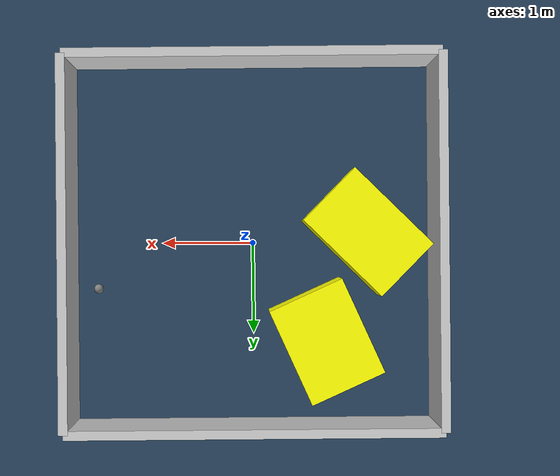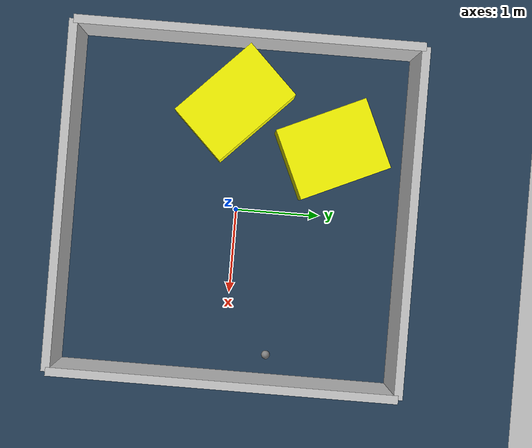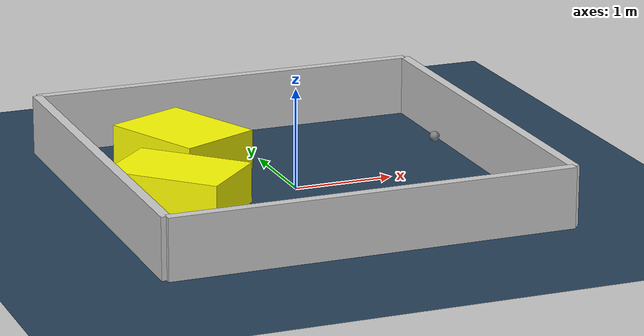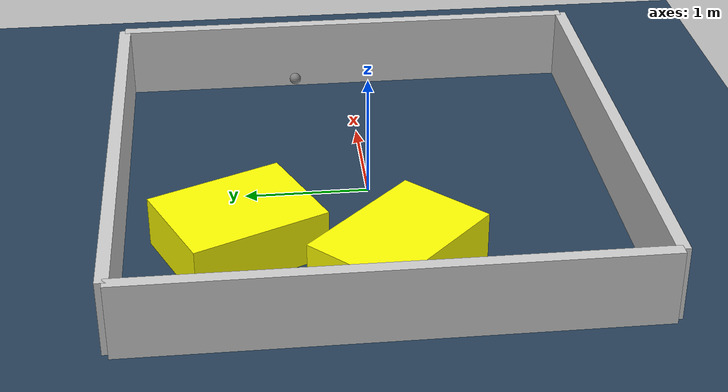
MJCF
<?xml version="1.0" ?>
<mujoco model="generated_environment">
  <option timestep="0.01" integrator="RK4" cone="elliptic"/>
  <default>
    <geom density="1"/>
  </default>
  <asset>
    <texture builtin="gradient" height="3072" rgb1="0.3 0.5 0.7" rgb2="0 0 0" type="skybox" width="512"/>
    <texture builtin="checker" height="300" mark="edge" markrgb="0.8 0.8 0.8" name="groundplane" rgb1="0.2 0.3 0.4" rgb2="0.1 0.2 0.3" type="2d" width="300"/>
    <material name="groundplane" reflectance="0.2" texrepeat="5 5" texture="groundplane" texuniform="true"/>
    <material name="robot" rgba="0.0 1.0 0.0 1"/>
  </asset>
  <worldbody>
    <light dir="0 0 -1" directional="true" pos="0 0 1.5"/>
    <geom condim="4" friction="1.0 0.005 0.001" material="groundplane" name="floor" size="0 0 0.05" type="plane"/>
    <body name="walls">
      <geom name="wall_1" condim="4" pos="-2.0 0.0 0.3" rgba="0.800000011920929 0.800000011920929 0.800000011920929 1.0" size="0.05 2.0 0.3" type="box"/>
      <geom name="wall_2" condim="4" pos="2.0 0.0 0.3" rgba="0.800000011920929 0.800000011920929 0.800000011920929 1.0" size="0.05 2.0 0.3" type="box"/>
      <geom name="wall_3" condim="4" pos="0.0 -2.0 0.3" rgba="0.800000011920929 0.800000011920929 0.800000011920929 1.0" size="2.0 0.05 0.3" type="box"/>
      <geom name="wall_4" condim="4" pos="0.0 2.0 0.3" rgba="0.800000011920929 0.800000011920929 0.800000011920929 1.0" size="2.0 0.05 0.3" type="box"/>
    </body>
    <body name="robot">
      <joint name="joint_x" type="slide" pos="0 0 0" axis="1 0 0"/>
      <joint name="joint_y" type="slide" pos="0 0 0" axis="0 1 0"/>
      <geom name="robot" type="sphere" pos="1.685550345130967 0.4886933782188758 0.2" size="0.05" mass="5." friction="1.0 0.005 0.0001" condim="4"/>
      <site name="sensor_ball"/>
    </body>
    <body name="obstacle_1_movable">
      <geom name="obstacle_1_movable" condim="4" pos="-1.2359171780699572 -0.10616344982752768 0.2" euler="0 0 135.31841534433426" friction="1.0 0.005 0.001" rgba="1 1 0 1" size="0.5852522242673712 0.3957880398899769 0.2" type="box" mass="0.1"/>
      <joint type="free"/>
    </body>
    <body name="obstacle_2_movable">
      <geom name="obstacle_2_movable" condim="4" pos="-0.7857503301256799 1.069677542871799 0.2" euler="0 0 204.18282653702093" friction="1.0 0.005 0.001" rgba="1 1 0 1" size="0.428217775757495 0.5526133589885275 0.2" type="box" mass="0.1"/>
      <joint type="free"/>
    </body>
  </worldbody>
  <actuator>
    <motor name="actuator_x" joint="joint_x" gear="1" ctrlrange="-1 1"/>
    <motor name="actuator_y" joint="joint_y" gear="1" ctrlrange="-1 1"/>
  </actuator>
</mujoco>
